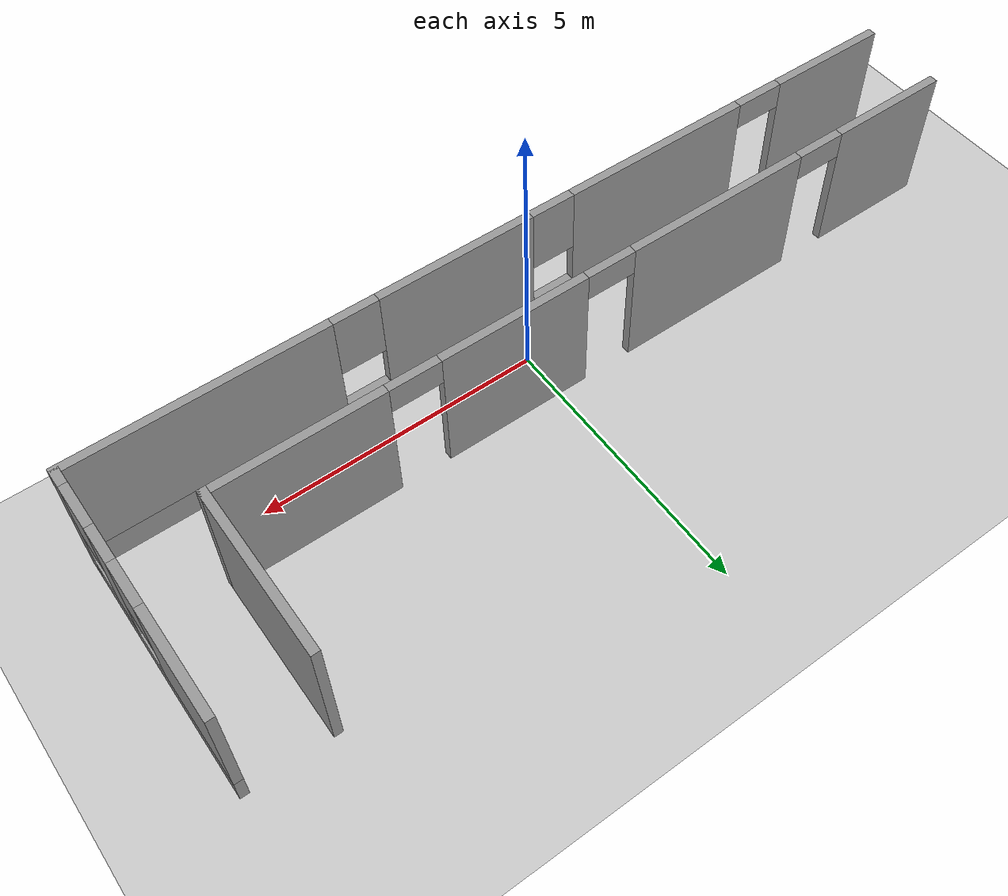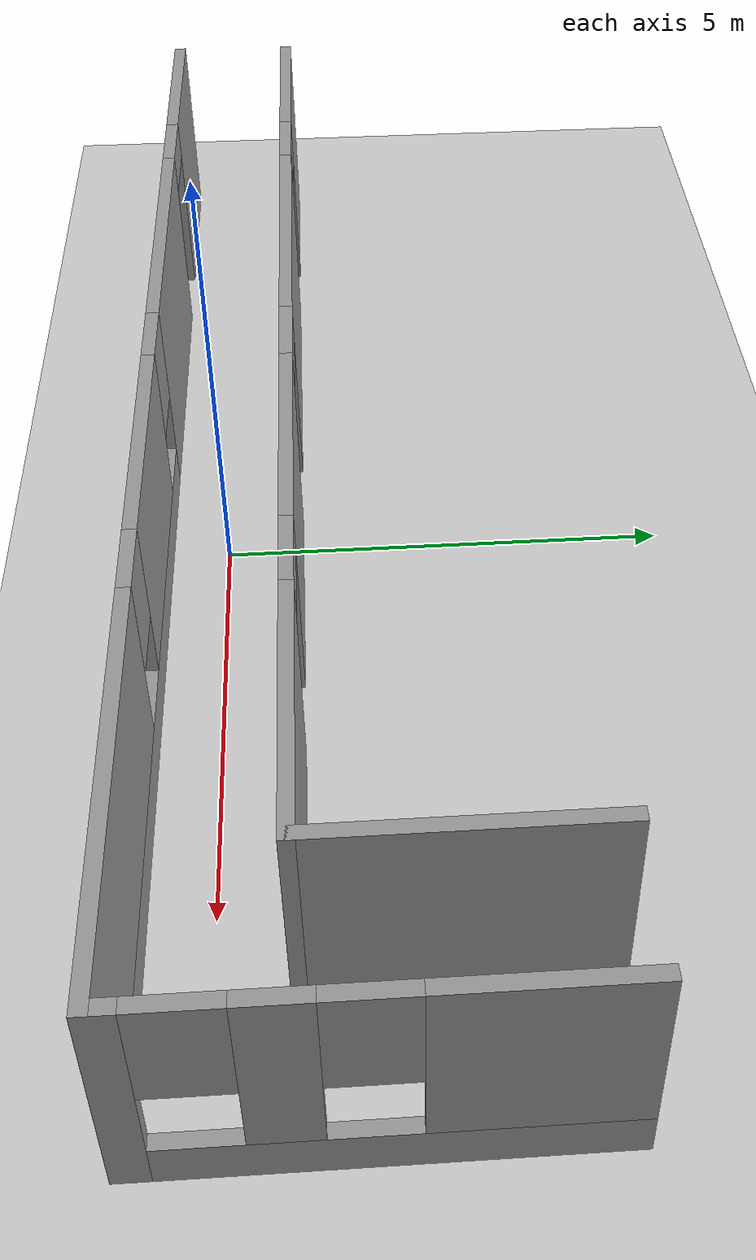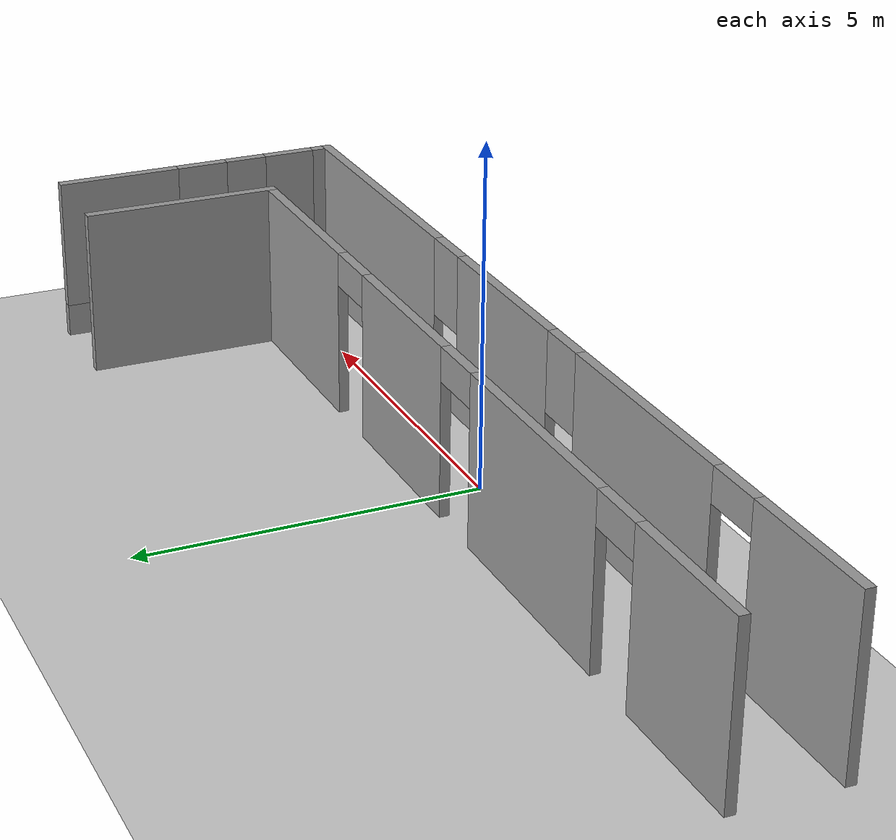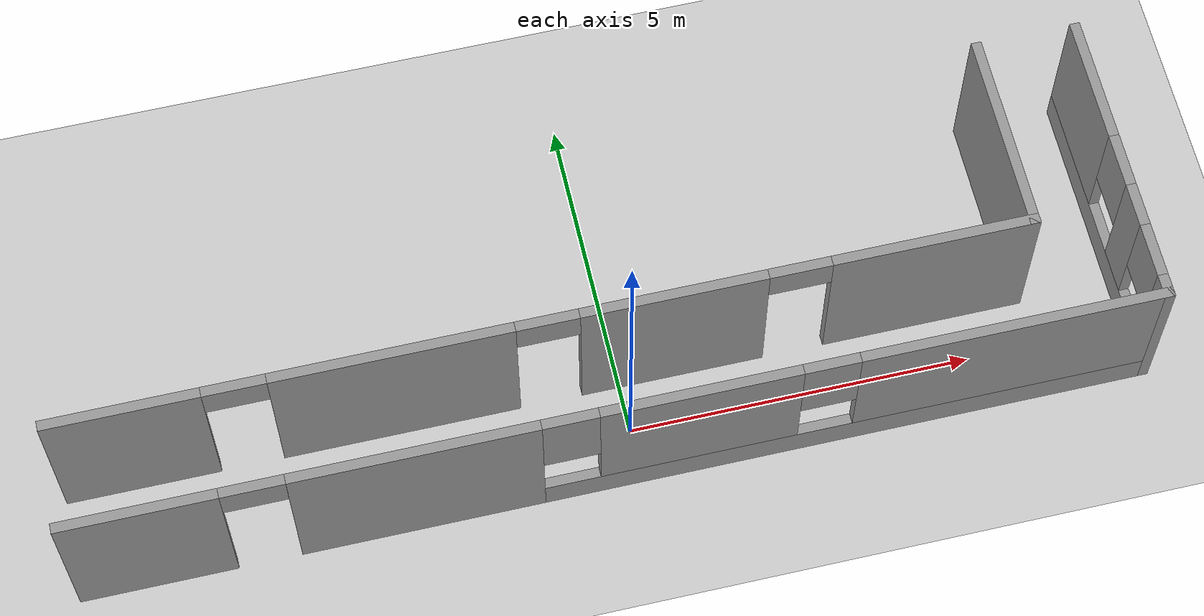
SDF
<sdf version="1.6">
 <world name="default">
  <light name="sun" type="directional">
   <pose>0 0 10 0 -0 0</pose>
   <diffuse>0.8 0.8 0.8 1</diffuse>
   <specular>0.1 0.1 0.1 1</specular>
   <attenuation>
    <range>1000</range>
    <constant>0.9</constant>
    <linear>0.01</linear>
    <quadratic>0.001</quadratic>
   </attenuation>
   <direction>-0.5 0.5 -1</direction>
  </light>
  <model name="ground_plane">
   <static>1</static>
   <link name="link">
    <collision name="collision">
     <geometry><plane><normal>0 0 1</normal><size>100 100</size></plane></geometry>
     <surface><friction><ode><mu>100</mu><mu2>50</mu2></ode></friction></surface>
    </collision>
    <visual name="visual">
     <cast_shadows>0</cast_shadows>
     <geometry><plane><normal>0 0 1</normal><size>100 100</size></plane></geometry>
     <material>
      <script><uri>file://media/materials/scripts/gazebo.material</uri><name>Gazebo/Grey</name></script>
     </material>
    </visual>
   </link>
  </model>
  <gravity>0 0 -9.8</gravity>
  <magnetic_field>6e-06 2.3e-05 -4.2e-05</magnetic_field>
  <atmosphere type="adiabatic"/>
  <physics name="default_physics" default="0" type="ode">
   <max_step_size>0.001</max_step_size>
   <real_time_factor>1</real_time_factor>
   <real_time_update_rate>1000</real_time_update_rate>
  </physics>
  <scene><ambient>0.4 0.4 0.4 1</ambient><background>0.7 0.7 0.7 1</background><shadows>1</shadows></scene>
  <spherical_coordinates>
   <surface_model>EARTH_WGS84</surface_model>
   <latitude_deg>0</latitude_deg>
   <longitude_deg>0</longitude_deg>
   <elevation>0</elevation>
   <heading_deg>0</heading_deg>
  </spherical_coordinates>
  <model name="corridor_simple">
   <pose>-0.283848 1.45325 0 0 -0 0</pose>
   <link name="Wall_5">
    <pose>0 -2.17962 0 0 -0 0</pose>
    <visual name="Wall_5_Visual_0">
     <pose>-6.6313 0 1.25 0 -0 0</pose>
     <geometry><box><size>2.23739 0.15 2.5</size></box></geometry>
     <material>
      <script><uri>file://media/materials/scripts/gazebo.material</uri><name>Gazebo/Grey</name></script>
      <ambient>1 1 1 1</ambient>
     </material>
     <meta><layer>0</layer></meta>
    </visual>
    <collision name="Wall_5_Collision_0">
     <geometry><box><size>2.23739 0.15 2.5</size></box></geometry>
     <pose>-6.6313 0 1.25 0 -0 0</pose>
    </collision>
    <visual name="Wall_5_Visual_1">
     <pose>-2.86884 0 1.25 0 -0 0</pose>
     <geometry><box><size>3.48753 0.15 2.5</size></box></geometry>
     <material>
      <script><uri>file://media/materials/scripts/gazebo.material</uri><name>Gazebo/Grey</name></script>
      <ambient>1 1 1 1</ambient>
     </material>
     <meta><layer>0</layer></meta>
    </visual>
    <collision name="Wall_5_Collision_1">
     <geometry><box><size>3.48753 0.15 2.5</size></box></geometry>
     <pose>-2.86884 0 1.25 0 -0 0</pose>
    </collision>
    <visual name="Wall_5_Visual_2">
     <pose>3.31246 0 0.25 0 -0 0</pose>
     <geometry><box><size>8.87507 0.15 0.5</size></box></geometry>
     <material>
      <script><uri>file://media/materials/scripts/gazebo.material</uri><name>Gazebo/Grey</name></script>
      <ambient>1 1 1 1</ambient>
     </material>
     <meta><layer>0</layer></meta>
    </visual>
    <collision name="Wall_5_Collision_2">
     <geometry><box><size>8.87507 0.15 0.5</size></box></geometry>
     <pose>3.31246 0 0.25 0 -0 0</pose>
    </collision>
    <visual name="Wall_5_Visual_3">
     <pose>1.0939 0 1.5 0 -0 0</pose>
     <geometry><box><size>2.83793 0.15 2</size></box></geometry>
     <material>
      <script><uri>file://media/materials/scripts/gazebo.material</uri><name>Gazebo/Grey</name></script>
      <ambient>1 1 1 1</ambient>
     </material>
     <meta><layer>0</layer></meta>
    </visual>
    <collision name="Wall_5_Collision_3">
     <geometry><box><size>2.83793 0.15 2</size></box></geometry>
     <pose>1.0939 0 1.5 0 -0 0</pose>
    </collision>
    <visual name="Wall_5_Visual_4">
     <pose>5.53143 0 1.5 0 -0 0</pose>
     <geometry><box><size>4.43714 0.15 2</size></box></geometry>
     <material>
      <script><uri>file://media/materials/scripts/gazebo.material</uri><name>Gazebo/Grey</name></script>
      <ambient>1 1 1 1</ambient>
     </material>
     <meta><layer>0</layer></meta>
    </visual>
    <collision name="Wall_5_Collision_4">
     <geometry><box><size>4.43714 0.15 2</size></box></geometry>
     <pose>5.53143 0 1.5 0 -0 0</pose>
    </collision>
    <visual name="Wall_5_Visual_5">
     <pose>-0.725072 0 1.9 0 -0 0</pose>
     <geometry><box><size>0.8 0.15 1.2</size></box></geometry>
     <material>
      <script><uri>file://media/materials/scripts/gazebo.material</uri><name>Gazebo/Grey</name></script>
      <ambient>1 1 1 1</ambient>
     </material>
     <meta><layer>0</layer></meta>
    </visual>
    <collision name="Wall_5_Collision_5">
     <geometry><box><size>0.8 0.15 1.2</size></box></geometry>
     <pose>-0.725072 0 1.9 0 -0 0</pose>
    </collision>
    <visual name="Wall_5_Visual_6">
     <pose>2.91286 0 1.9 0 -0 0</pose>
     <geometry><box><size>0.8 0.15 1.2</size></box></geometry>
     <material>
      <script><uri>file://media/materials/scripts/gazebo.material</uri><name>Gazebo/Grey</name></script>
      <ambient>1 1 1 1</ambient>
     </material>
     <meta><layer>0</layer></meta>
    </visual>
    <collision name="Wall_5_Collision_6">
     <geometry><box><size>0.8 0.15 1.2</size></box></geometry>
     <pose>2.91286 0 1.9 0 -0 0</pose>
    </collision>
    <visual name="Wall_5_Visual_7">
     <pose>-5.06261 0 2.25 0 -0 0</pose>
     <geometry><box><size>0.9 0.15 0.5</size></box></geometry>
     <material>
      <script><uri>file://media/materials/scripts/gazebo.material</uri><name>Gazebo/Grey</name></script>
      <ambient>1 1 1 1</ambient>
     </material>
     <meta><layer>0</layer></meta>
    </visual>
    <collision name="Wall_5_Collision_7">
     <geometry><box><size>0.9 0.15 0.5</size></box></geometry>
     <pose>-5.06261 0 2.25 0 -0 0</pose>
    </collision>
   </link>
   <link name="Wall_6">
    <pose>7.675 -0.004623 0 0 -0 1.5708</pose>
    <visual name="Wall_6_Visual_0">
     <pose>-2.07332 0 1.25 0 -0 0</pose>
     <geometry><box><size>0.353357 0.15 2.5</size></box></geometry>
     <material>
      <script><uri>file://media/materials/scripts/gazebo.material</uri><name>Gazebo/Grey</name></script>
      <ambient>1 1 1 1</ambient>
     </material>
     <meta><layer>0</layer></meta>
    </visual>
    <collision name="Wall_6_Collision_0">
     <geometry><box><size>0.353357 0.15 2.5</size></box></geometry>
     <pose>-2.07332 0 1.25 0 -0 0</pose>
    </collision>
    <visual name="Wall_6_Visual_1">
     <pose>0.176679 0 0.25 0 -0 0</pose>
     <geometry><box><size>4.14664 0.15 0.5</size></box></geometry>
     <material>
      <script><uri>file://media/materials/scripts/gazebo.material</uri><name>Gazebo/Grey</name></script>
      <ambient>1 1 1 1</ambient>
     </material>
     <meta><layer>0</layer></meta>
    </visual>
    <collision name="Wall_6_Collision_1">
     <geometry><box><size>4.14664 0.15 0.5</size></box></geometry>
     <pose>0.176679 0 0.25 0 -0 0</pose>
    </collision>
    <visual name="Wall_6_Visual_2">
     <pose>-0.770805 0 1.5 0 -0 0</pose>
     <geometry><box><size>0.651675 0.15 2</size></box></geometry>
     <material>
      <script><uri>file://media/materials/scripts/gazebo.material</uri><name>Gazebo/Grey</name></script>
      <ambient>1 1 1 1</ambient>
     </material>
     <meta><layer>0</layer></meta>
    </visual>
    <collision name="Wall_6_Collision_2">
     <geometry><box><size>0.651675 0.15 2</size></box></geometry>
     <pose>-0.770805 0 1.5 0 -0 0</pose>
    </collision>
    <visual name="Wall_6_Visual_3">
     <pose>1.30252 0 1.5 0 -0 0</pose>
     <geometry><box><size>1.89497 0.15 2</size></box></geometry>
     <material>
      <script><uri>file://media/materials/scripts/gazebo.material</uri><name>Gazebo/Grey</name></script>
      <ambient>1 1 1 1</ambient>
     </material>
     <meta><layer>0</layer></meta>
    </visual>
    <collision name="Wall_6_Collision_3">
     <geometry><box><size>1.89497 0.15 2</size></box></geometry>
     <pose>1.30252 0 1.5 0 -0 0</pose>
    </collision>
    <visual name="Wall_6_Visual_4">
     <pose>-1.49664 0 1.9 0 -0 0</pose>
     <geometry><box><size>0.8 0.15 1.2</size></box></geometry>
     <material>
      <script><uri>file://media/materials/scripts/gazebo.material</uri><name>Gazebo/Grey</name></script>
      <ambient>1 1 1 1</ambient>
     </material>
     <meta><layer>0</layer></meta>
    </visual>
    <collision name="Wall_6_Collision_4">
     <geometry><box><size>0.8 0.15 1.2</size></box></geometry>
     <pose>-1.49664 0 1.9 0 -0 0</pose>
    </collision>
    <visual name="Wall_6_Visual_5">
     <pose>-0.044967 0 1.9 0 -0 0</pose>
     <geometry><box><size>0.8 0.15 1.2</size></box></geometry>
     <material>
      <script><uri>file://media/materials/scripts/gazebo.material</uri><name>Gazebo/Grey</name></script>
      <ambient>1 1 1 1</ambient>
     </material>
     <meta><layer>0</layer></meta>
    </visual>
    <collision name="Wall_6_Collision_5">
     <geometry><box><size>0.8 0.15 1.2</size></box></geometry>
     <pose>-0.044967 0 1.9 0 -0 0</pose>
    </collision>
   </link>
   <link name="Wall_8">
    <collision name="Wall_8_Collision">
     <geometry><box><size>3 0.15 2.5</size></box></geometry>
     <pose>0 0 1.25 0 -0 0</pose>
    </collision>
    <visual name="Wall_8_Visual">
     <pose>0 0 1.25 0 -0 0</pose>
     <geometry><box><size>3 0.15 2.5</size></box></geometry>
     <material>
      <script><uri>file://media/materials/scripts/gazebo.material</uri><name>Gazebo/Grey</name></script>
      <ambient>1 1 1 1</ambient>
     </material>
     <meta><layer>0</layer></meta>
    </visual>
    <pose>6.21258 0.754622 0 0 0 -1.5708</pose>
   </link>
   <link name="Wall_9">
    <pose>-0.712424 -0.670377 0 0 -0 3.14159</pose>
    <visual name="Wall_9_Visual_0">
     <pose>-5.51141 0 1.25 0 -0 0</pose>
     <geometry><box><size>2.97718 0.15 2.5</size></box></geometry>
     <material>
      <script><uri>file://media/materials/scripts/gazebo.material</uri><name>Gazebo/Grey</name></script>
      <ambient>1 1 1 1</ambient>
     </material>
     <meta><layer>0</layer></meta>
    </visual>
    <collision name="Wall_9_Collision_0">
     <geometry><box><size>2.97718 0.15 2.5</size></box></geometry>
     <pose>-5.51141 0 1.25 0 -0 0</pose>
    </collision>
    <visual name="Wall_9_Visual_1">
     <pose>-1.78883 0 1.25 0 -0 0</pose>
     <geometry><box><size>2.66797 0.15 2.5</size></box></geometry>
     <material>
      <script><uri>file://media/materials/scripts/gazebo.material</uri><name>Gazebo/Grey</name></script>
      <ambient>1 1 1 1</ambient>
     </material>
     <meta><layer>0</layer></meta>
    </visual>
    <collision name="Wall_9_Collision_1">
     <geometry><box><size>2.66797 0.15 2.5</size></box></geometry>
     <pose>-1.78883 0 1.25 0 -0 0</pose>
    </collision>
    <visual name="Wall_9_Visual_2">
     <pose>2.16393 0 1.25 0 -0 0</pose>
     <geometry><box><size>3.43754 0.15 2.5</size></box></geometry>
     <material>
      <script><uri>file://media/materials/scripts/gazebo.material</uri><name>Gazebo/Grey</name></script>
      <ambient>1 1 1 1</ambient>
     </material>
     <meta><layer>0</layer></meta>
    </visual>
    <collision name="Wall_9_Collision_2">
     <geometry><box><size>3.43754 0.15 2.5</size></box></geometry>
     <pose>2.16393 0 1.25 0 -0 0</pose>
    </collision>
    <visual name="Wall_9_Visual_3">
     <pose>5.89135 0 1.25 0 -0 0</pose>
     <geometry><box><size>2.21731 0.15 2.5</size></box></geometry>
     <material>
      <script><uri>file://media/materials/scripts/gazebo.material</uri><name>Gazebo/Grey</name></script>
      <ambient>1 1 1 1</ambient>
     </material>
     <meta><layer>0</layer></meta>
    </visual>
    <collision name="Wall_9_Collision_3">
     <geometry><box><size>2.21731 0.15 2.5</size></box></geometry>
     <pose>5.89135 0 1.25 0 -0 0</pose>
    </collision>
    <visual name="Wall_9_Visual_4">
     <pose>-3.57281 0 2.25 0 -0 0</pose>
     <geometry><box><size>0.9 0.15 0.5</size></box></geometry>
     <material>
      <script><uri>file://media/materials/scripts/gazebo.material</uri><name>Gazebo/Grey</name></script>
      <ambient>1 1 1 1</ambient>
     </material>
     <meta><layer>0</layer></meta>
    </visual>
    <collision name="Wall_9_Collision_4">
     <geometry><box><size>0.9 0.15 0.5</size></box></geometry>
     <pose>-3.57281 0 2.25 0 -0 0</pose>
    </collision>
    <visual name="Wall_9_Visual_5">
     <pose>-0.004842 0 2.25 0 -0 0</pose>
     <geometry><box><size>0.9 0.15 0.5</size></box></geometry>
     <material>
      <script><uri>file://media/materials/scripts/gazebo.material</uri><name>Gazebo/Grey</name></script>
      <ambient>1 1 1 1</ambient>
     </material>
     <meta><layer>0</layer></meta>
    </visual>
    <collision name="Wall_9_Collision_5">
     <geometry><box><size>0.9 0.15 0.5</size></box></geometry>
     <pose>-0.004842 0 2.25 0 -0 0</pose>
    </collision>
    <visual name="Wall_9_Visual_6">
     <pose>4.33269 0 2.25 0 -0 0</pose>
     <geometry><box><size>0.9 0.15 0.5</size></box></geometry>
     <material>
      <script><uri>file://media/materials/scripts/gazebo.material</uri><name>Gazebo/Grey</name></script>
      <ambient>1 1 1 1</ambient>
     </material>
     <meta><layer>0</layer></meta>
    </visual>
    <collision name="Wall_9_Collision_6">
     <geometry><box><size>0.9 0.15 0.5</size></box></geometry>
     <pose>4.33269 0 2.25 0 -0 0</pose>
    </collision>
   </link>
   <static>1</static>
  </model>
 </world>
</sdf>
